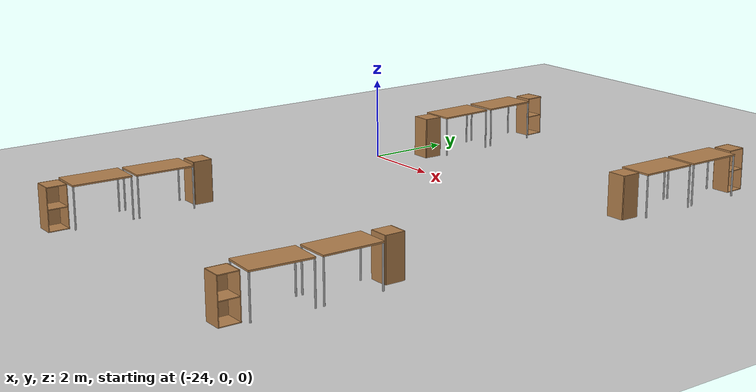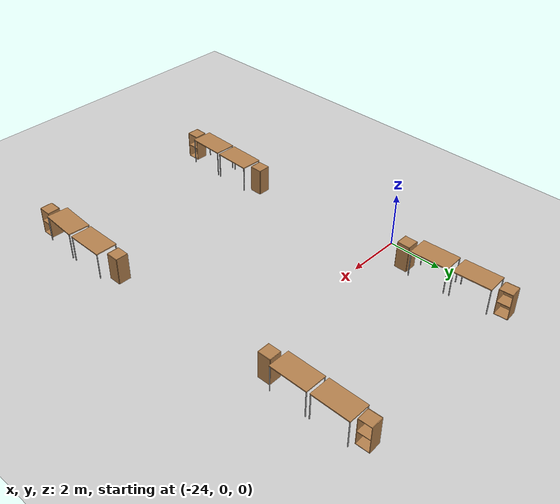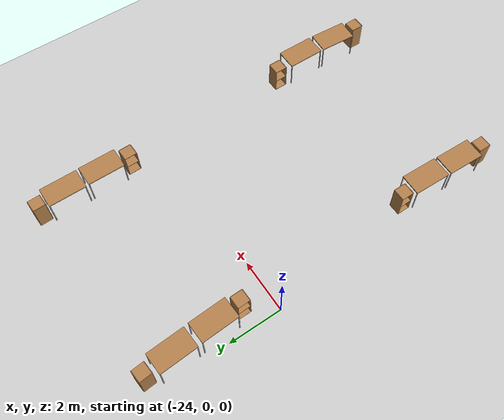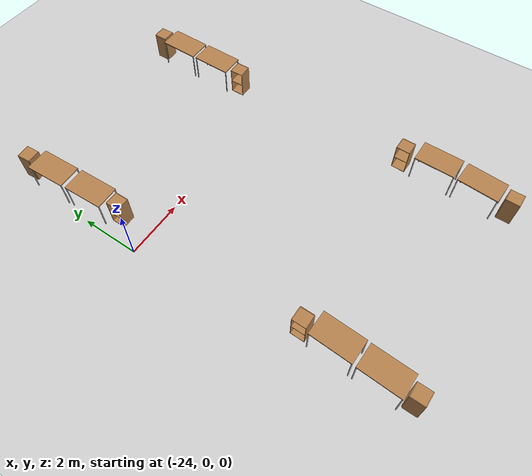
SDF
<sdf version="1.6">
 <world name="default">
  <model name="ground_plane">
   <static>1</static>
   <link name="link">
    <collision name="collision">
     <geometry><plane><normal>0 0 1</normal><size>100 100</size></plane></geometry>
     <surface><friction><ode><mu>100</mu><mu2>50</mu2></ode></friction></surface>
    </collision>
    <visual name="visual">
     <cast_shadows>0</cast_shadows>
     <geometry><plane><normal>0 0 1</normal><size>100 100</size></plane></geometry>
     <material>
      <script><uri>file://media/materials/scripts/gazebo.material</uri><name>Gazebo/Grey</name></script>
     </material>
    </visual>
   </link>
  </model>
  <model name="cabinet">
   <static>1</static>
   <link name="cabinet_bottom_plate">
    <inertial>
     <pose>0 0 -1 0 -0 0</pose>
     <inertia><ixx>2.05</ixx><ixy>0</ixy><ixz>0</ixz><iyy>2.05</iyy><iyz>0</iyz><izz>2.05</izz></inertia>
     <mass>25</mass>
    </inertial>
    <collision name="cabinet_bottom_plate_geom">
     <pose>0 0 0.01 0 -0 0</pose>
     <geometry><box><size>0.45 0.45 0.02</size></box></geometry>
    </collision>
    <visual name="cabinet_bottom_plate_geom_visual">
     <pose>0 0 0.01 0 -0 0</pose>
     <geometry><box><size>0.45 0.45 0.02</size></box></geometry>
     <material>
      <script><uri>file://media/materials/scripts/gazebo.material</uri><name>Gazebo/Wood</name></script>
     </material>
    </visual>
    <collision name="cabinet_bottom_plate_geom_cabinet_back_plate">
     <pose>0.235 0 0.51 0 -0 0</pose>
     <geometry><box><size>0.02 0.45 1.02</size></box></geometry>
    </collision>
    <visual name="cabinet_bottom_plate_geom_cabinet_back_plate_visual">
     <pose>0.235 0 0.51 0 -0 0</pose>
     <geometry><box><size>0.02 0.45 1.02</size></box></geometry>
     <material>
      <script><uri>file://media/materials/scripts/gazebo.material</uri><name>Gazebo/Wood</name></script>
     </material>
    </visual>
    <collision name="cabinet_bottom_plate_geom_cabinet_left_plate">
     <pose>0 0.235 0.51 0 -0 0</pose>
     <geometry><box><size>0.45 0.02 1.02</size></box></geometry>
    </collision>
    <visual name="cabinet_bottom_plate_geom_cabinet_left_plate_visual">
     <pose>0 0.235 0.51 0 -0 0</pose>
     <geometry><box><size>0.45 0.02 1.02</size></box></geometry>
     <material>
      <script><uri>file://media/materials/scripts/gazebo.material</uri><name>Gazebo/Wood</name></script>
     </material>
    </visual>
    <collision name="cabinet_bottom_plate_geom_cabinet_middle_plate">
     <pose>0 0 0.51 0 -0 0</pose>
     <geometry><box><size>0.45 0.45 0.02</size></box></geometry>
    </collision>
    <visual name="cabinet_bottom_plate_geom_cabinet_middle_plate_visual">
     <pose>0 0 0.51 0 -0 0</pose>
     <geometry><box><size>0.45 0.45 0.02</size></box></geometry>
     <material>
      <script><uri>file://media/materials/scripts/gazebo.material</uri><name>Gazebo/Wood</name></script>
     </material>
    </visual>
    <collision name="cabinet_bottom_plate_geom_cabinet_right_plate">
     <pose>0 -0.235 0.51 0 -0 0</pose>
     <geometry><box><size>0.45 0.02 1.02</size></box></geometry>
    </collision>
    <visual name="cabinet_bottom_plate_geom_cabinet_right_plate_visual">
     <pose>0 -0.235 0.51 0 -0 0</pose>
     <geometry><box><size>0.45 0.02 1.02</size></box></geometry>
     <material>
      <script><uri>file://media/materials/scripts/gazebo.material</uri><name>Gazebo/Wood</name></script>
     </material>
    </visual>
    <collision name="cabinet_bottom_plate_geom_cabinet_top_plate">
     <pose>0 0 1.01 0 -0 0</pose>
     <geometry><box><size>0.45 0.45 0.02</size></box></geometry>
    </collision>
    <visual name="cabinet_bottom_plate_geom_cabinet_top_plate_visual">
     <pose>0 0 1.01 0 -0 0</pose>
     <geometry><box><size>0.45 0.45 0.02</size></box></geometry>
     <material>
      <script><uri>file://media/materials/scripts/gazebo.material</uri><name>Gazebo/Wood</name></script>
     </material>
    </visual>
   </link>
   <pose>-23.2293 -5.67908 0 0 -0 0.000948</pose>
  </model>
  <model name="table">
   <static>0</static>
   <link name="link">
    <collision name="surface">
     <pose>0 0 1 0 -0 0</pose>
     <geometry><box><size>1.5 0.8 0.03</size></box></geometry>
     <surface><friction><ode><mu>0.6</mu><mu2>0.6</mu2></ode></friction></surface>
    </collision>
    <visual name="visual1">
     <pose>0 0 1 0 -0 0</pose>
     <geometry><box><size>1.4 0.8 0.04</size></box></geometry>
     <material>
      <script><uri>file://media/materials/scripts/gazebo.material</uri><name>Gazebo/Wood</name></script>
     </material>
    </visual>
    <collision name="front_left_leg">
     <pose>0.68 0.38 0.5 0 -0 0</pose>
     <geometry><cylinder><radius>0.02</radius><length>1</length></cylinder></geometry>
    </collision>
    <visual name="front_left_leg">
     <pose>0.68 0.38 0.5 0 -0 0</pose>
     <geometry><cylinder><radius>0.02</radius><length>1</length></cylinder></geometry>
     <material>
      <script><uri>file://media/materials/scripts/gazebo.material</uri><name>Gazebo/Grey</name></script>
     </material>
    </visual>
    <collision name="front_right_leg">
     <pose>0.68 -0.38 0.5 0 -0 0</pose>
     <geometry><cylinder><radius>0.02</radius><length>1</length></cylinder></geometry>
    </collision>
    <visual name="front_right_leg">
     <pose>0.68 -0.38 0.5 0 -0 0</pose>
     <geometry><cylinder><radius>0.02</radius><length>1</length></cylinder></geometry>
     <material>
      <script><uri>file://media/materials/scripts/gazebo.material</uri><name>Gazebo/Grey</name></script>
     </material>
    </visual>
    <collision name="back_right_leg">
     <pose>-0.68 -0.38 0.5 0 -0 0</pose>
     <geometry><cylinder><radius>0.02</radius><length>1</length></cylinder></geometry>
    </collision>
    <visual name="back_right_leg">
     <pose>-0.68 -0.38 0.5 0 -0 0</pose>
     <geometry><cylinder><radius>0.02</radius><length>1</length></cylinder></geometry>
     <material>
      <script><uri>file://media/materials/scripts/gazebo.material</uri><name>Gazebo/Grey</name></script>
     </material>
    </visual>
    <collision name="back_left_leg">
     <pose>-0.68 0.38 0.5 0 -0 0</pose>
     <geometry><cylinder><radius>0.02</radius><length>1</length></cylinder></geometry>
    </collision>
    <visual name="back_left_leg">
     <pose>-0.68 0.38 0.5 0 -0 0</pose>
     <geometry><cylinder><radius>0.02</radius><length>1</length></cylinder></geometry>
     <material>
      <script><uri>file://media/materials/scripts/gazebo.material</uri><name>Gazebo/Grey</name></script>
     </material>
    </visual>
    <inertial>
     <inertia><ixx>1</ixx><ixy>0</ixy><ixz>0</ixz><iyy>1</iyy><iyz>0</iyz><izz>1</izz></inertia>
     <mass>1</mass>
    </inertial>
   </link>
   <pose>-23.227 -8.22913 -1e-06 -0 1e-06 -1.60622</pose>
  </model>
  <model name="table_clone">
   <static>0</static>
   <link name="link">
    <collision name="surface">
     <pose>0 0 1 0 -0 0</pose>
     <geometry><box><size>1.5 0.8 0.03</size></box></geometry>
     <surface><friction><ode><mu>0.6</mu><mu2>0.6</mu2></ode></friction></surface>
    </collision>
    <visual name="visual1">
     <pose>0 0 1 0 -0 0</pose>
     <geometry><box><size>1.4 0.8 0.04</size></box></geometry>
     <material>
      <script><uri>file://media/materials/scripts/gazebo.material</uri><name>Gazebo/Wood</name></script>
     </material>
    </visual>
    <collision name="front_left_leg">
     <pose>0.68 0.38 0.5 0 -0 0</pose>
     <geometry><cylinder><radius>0.02</radius><length>1</length></cylinder></geometry>
    </collision>
    <visual name="front_left_leg">
     <pose>0.68 0.38 0.5 0 -0 0</pose>
     <geometry><cylinder><radius>0.02</radius><length>1</length></cylinder></geometry>
     <material>
      <script><uri>file://media/materials/scripts/gazebo.material</uri><name>Gazebo/Grey</name></script>
     </material>
    </visual>
    <collision name="front_right_leg">
     <pose>0.68 -0.38 0.5 0 -0 0</pose>
     <geometry><cylinder><radius>0.02</radius><length>1</length></cylinder></geometry>
    </collision>
    <visual name="front_right_leg">
     <pose>0.68 -0.38 0.5 0 -0 0</pose>
     <geometry><cylinder><radius>0.02</radius><length>1</length></cylinder></geometry>
     <material>
      <script><uri>file://media/materials/scripts/gazebo.material</uri><name>Gazebo/Grey</name></script>
     </material>
    </visual>
    <collision name="back_right_leg">
     <pose>-0.68 -0.38 0.5 0 -0 0</pose>
     <geometry><cylinder><radius>0.02</radius><length>1</length></cylinder></geometry>
    </collision>
    <visual name="back_right_leg">
     <pose>-0.68 -0.38 0.5 0 -0 0</pose>
     <geometry><cylinder><radius>0.02</radius><length>1</length></cylinder></geometry>
     <material>
      <script><uri>file://media/materials/scripts/gazebo.material</uri><name>Gazebo/Grey</name></script>
     </material>
    </visual>
    <collision name="back_left_leg">
     <pose>-0.68 0.38 0.5 0 -0 0</pose>
     <geometry><cylinder><radius>0.02</radius><length>1</length></cylinder></geometry>
    </collision>
    <visual name="back_left_leg">
     <pose>-0.68 0.38 0.5 0 -0 0</pose>
     <geometry><cylinder><radius>0.02</radius><length>1</length></cylinder></geometry>
     <material>
      <script><uri>file://media/materials/scripts/gazebo.material</uri><name>Gazebo/Grey</name></script>
     </material>
    </visual>
    <inertial>
     <inertia><ixx>1</ixx><ixy>0</ixy><ixz>0</ixz><iyy>1</iyy><iyz>0</iyz><izz>1</izz></inertia>
     <mass>1</mass>
    </inertial>
   </link>
   <pose>-23.4772 3.6839 -9e-06 1e-06 -0 1.62339</pose>
  </model>
  <model name="table_clone_0">
   <static>0</static>
   <link name="link">
    <collision name="surface">
     <pose>0 0 1 0 -0 0</pose>
     <geometry><box><size>1.5 0.8 0.03</size></box></geometry>
     <surface><friction><ode><mu>0.6</mu><mu2>0.6</mu2></ode></friction></surface>
    </collision>
    <visual name="visual1">
     <pose>0 0 1 0 -0 0</pose>
     <geometry><box><size>1.4 0.8 0.04</size></box></geometry>
     <material>
      <script><uri>file://media/materials/scripts/gazebo.material</uri><name>Gazebo/Wood</name></script>
     </material>
    </visual>
    <collision name="front_left_leg">
     <pose>0.68 0.38 0.5 0 -0 0</pose>
     <geometry><cylinder><radius>0.02</radius><length>1</length></cylinder></geometry>
    </collision>
    <visual name="front_left_leg">
     <pose>0.68 0.38 0.5 0 -0 0</pose>
     <geometry><cylinder><radius>0.02</radius><length>1</length></cylinder></geometry>
     <material>
      <script><uri>file://media/materials/scripts/gazebo.material</uri><name>Gazebo/Grey</name></script>
     </material>
    </visual>
    <collision name="front_right_leg">
     <pose>0.68 -0.38 0.5 0 -0 0</pose>
     <geometry><cylinder><radius>0.02</radius><length>1</length></cylinder></geometry>
    </collision>
    <visual name="front_right_leg">
     <pose>0.68 -0.38 0.5 0 -0 0</pose>
     <geometry><cylinder><radius>0.02</radius><length>1</length></cylinder></geometry>
     <material>
      <script><uri>file://media/materials/scripts/gazebo.material</uri><name>Gazebo/Grey</name></script>
     </material>
    </visual>
    <collision name="back_right_leg">
     <pose>-0.68 -0.38 0.5 0 -0 0</pose>
     <geometry><cylinder><radius>0.02</radius><length>1</length></cylinder></geometry>
    </collision>
    <visual name="back_right_leg">
     <pose>-0.68 -0.38 0.5 0 -0 0</pose>
     <geometry><cylinder><radius>0.02</radius><length>1</length></cylinder></geometry>
     <material>
      <script><uri>file://media/materials/scripts/gazebo.material</uri><name>Gazebo/Grey</name></script>
     </material>
    </visual>
    <collision name="back_left_leg">
     <pose>-0.68 0.38 0.5 0 -0 0</pose>
     <geometry><cylinder><radius>0.02</radius><length>1</length></cylinder></geometry>
    </collision>
    <visual name="back_left_leg">
     <pose>-0.68 0.38 0.5 0 -0 0</pose>
     <geometry><cylinder><radius>0.02</radius><length>1</length></cylinder></geometry>
     <material>
      <script><uri>file://media/materials/scripts/gazebo.material</uri><name>Gazebo/Grey</name></script>
     </material>
    </visual>
    <inertial>
     <inertia><ixx>1</ixx><ixy>0</ixy><ixz>0</ixz><iyy>1</iyy><iyz>0</iyz><izz>1</izz></inertia>
     <mass>1</mass>
    </inertial>
   </link>
   <pose>-23.1636 -6.73043 -8e-06 0 0 -1.60622</pose>
  </model>
  <model name="table_clone_clone">
   <static>0</static>
   <link name="link">
    <collision name="surface">
     <pose>0 0 1 0 -0 0</pose>
     <geometry><box><size>1.5 0.8 0.03</size></box></geometry>
     <surface><friction><ode><mu>0.6</mu><mu2>0.6</mu2></ode></friction></surface>
    </collision>
    <visual name="visual1">
     <pose>0 0 1 0 -0 0</pose>
     <geometry><box><size>1.4 0.8 0.04</size></box></geometry>
     <material>
      <script><uri>file://media/materials/scripts/gazebo.material</uri><name>Gazebo/Wood</name></script>
     </material>
    </visual>
    <collision name="front_left_leg">
     <pose>0.68 0.38 0.5 0 -0 0</pose>
     <geometry><cylinder><radius>0.02</radius><length>1</length></cylinder></geometry>
    </collision>
    <visual name="front_left_leg">
     <pose>0.68 0.38 0.5 0 -0 0</pose>
     <geometry><cylinder><radius>0.02</radius><length>1</length></cylinder></geometry>
     <material>
      <script><uri>file://media/materials/scripts/gazebo.material</uri><name>Gazebo/Grey</name></script>
     </material>
    </visual>
    <collision name="front_right_leg">
     <pose>0.68 -0.38 0.5 0 -0 0</pose>
     <geometry><cylinder><radius>0.02</radius><length>1</length></cylinder></geometry>
    </collision>
    <visual name="front_right_leg">
     <pose>0.68 -0.38 0.5 0 -0 0</pose>
     <geometry><cylinder><radius>0.02</radius><length>1</length></cylinder></geometry>
     <material>
      <script><uri>file://media/materials/scripts/gazebo.material</uri><name>Gazebo/Grey</name></script>
     </material>
    </visual>
    <collision name="back_right_leg">
     <pose>-0.68 -0.38 0.5 0 -0 0</pose>
     <geometry><cylinder><radius>0.02</radius><length>1</length></cylinder></geometry>
    </collision>
    <visual name="back_right_leg">
     <pose>-0.68 -0.38 0.5 0 -0 0</pose>
     <geometry><cylinder><radius>0.02</radius><length>1</length></cylinder></geometry>
     <material>
      <script><uri>file://media/materials/scripts/gazebo.material</uri><name>Gazebo/Grey</name></script>
     </material>
    </visual>
    <collision name="back_left_leg">
     <pose>-0.68 0.38 0.5 0 -0 0</pose>
     <geometry><cylinder><radius>0.02</radius><length>1</length></cylinder></geometry>
    </collision>
    <visual name="back_left_leg">
     <pose>-0.68 0.38 0.5 0 -0 0</pose>
     <geometry><cylinder><radius>0.02</radius><length>1</length></cylinder></geometry>
     <material>
      <script><uri>file://media/materials/scripts/gazebo.material</uri><name>Gazebo/Grey</name></script>
     </material>
    </visual>
    <inertial>
     <inertia><ixx>1</ixx><ixy>0</ixy><ixz>0</ixz><iyy>1</iyy><iyz>0</iyz><izz>1</izz></inertia>
     <mass>1</mass>
    </inertial>
   </link>
   <pose>-23.3855 2.13103 0 0 -0 1.61497</pose>
  </model>
  <model name="cabinet_clone">
   <static>1</static>
   <link name="cabinet_bottom_plate">
    <inertial>
     <pose>0 0 -1 0 -0 0</pose>
     <inertia><ixx>2.05</ixx><ixy>0</ixy><ixz>0</ixz><iyy>2.05</iyy><iyz>0</iyz><izz>2.05</izz></inertia>
     <mass>25</mass>
    </inertial>
    <collision name="cabinet_bottom_plate_geom">
     <pose>0 0 0.01 0 -0 0</pose>
     <geometry><box><size>0.45 0.45 0.02</size></box></geometry>
    </collision>
    <visual name="cabinet_bottom_plate_geom_visual">
     <pose>0 0 0.01 0 -0 0</pose>
     <geometry><box><size>0.45 0.45 0.02</size></box></geometry>
     <material>
      <script><uri>file://media/materials/scripts/gazebo.material</uri><name>Gazebo/Wood</name></script>
     </material>
    </visual>
    <collision name="cabinet_bottom_plate_geom_cabinet_back_plate">
     <pose>0.235 0 0.51 0 -0 0</pose>
     <geometry><box><size>0.02 0.45 1.02</size></box></geometry>
    </collision>
    <visual name="cabinet_bottom_plate_geom_cabinet_back_plate_visual">
     <pose>0.235 0 0.51 0 -0 0</pose>
     <geometry><box><size>0.02 0.45 1.02</size></box></geometry>
     <material>
      <script><uri>file://media/materials/scripts/gazebo.material</uri><name>Gazebo/Wood</name></script>
     </material>
    </visual>
    <collision name="cabinet_bottom_plate_geom_cabinet_left_plate">
     <pose>0 0.235 0.51 0 -0 0</pose>
     <geometry><box><size>0.45 0.02 1.02</size></box></geometry>
    </collision>
    <visual name="cabinet_bottom_plate_geom_cabinet_left_plate_visual">
     <pose>0 0.235 0.51 0 -0 0</pose>
     <geometry><box><size>0.45 0.02 1.02</size></box></geometry>
     <material>
      <script><uri>file://media/materials/scripts/gazebo.material</uri><name>Gazebo/Wood</name></script>
     </material>
    </visual>
    <collision name="cabinet_bottom_plate_geom_cabinet_middle_plate">
     <pose>0 0 0.51 0 -0 0</pose>
     <geometry><box><size>0.45 0.45 0.02</size></box></geometry>
    </collision>
    <visual name="cabinet_bottom_plate_geom_cabinet_middle_plate_visual">
     <pose>0 0 0.51 0 -0 0</pose>
     <geometry><box><size>0.45 0.45 0.02</size></box></geometry>
     <material>
      <script><uri>file://media/materials/scripts/gazebo.material</uri><name>Gazebo/Wood</name></script>
     </material>
    </visual>
    <collision name="cabinet_bottom_plate_geom_cabinet_right_plate">
     <pose>0 -0.235 0.51 0 -0 0</pose>
     <geometry><box><size>0.45 0.02 1.02</size></box></geometry>
    </collision>
    <visual name="cabinet_bottom_plate_geom_cabinet_right_plate_visual">
     <pose>0 -0.235 0.51 0 -0 0</pose>
     <geometry><box><size>0.45 0.02 1.02</size></box></geometry>
     <material>
      <script><uri>file://media/materials/scripts/gazebo.material</uri><name>Gazebo/Wood</name></script>
     </material>
    </visual>
    <collision name="cabinet_bottom_plate_geom_cabinet_top_plate">
     <pose>0 0 1.01 0 -0 0</pose>
     <geometry><box><size>0.45 0.45 0.02</size></box></geometry>
    </collision>
    <visual name="cabinet_bottom_plate_geom_cabinet_top_plate_visual">
     <pose>0 0 1.01 0 -0 0</pose>
     <geometry><box><size>0.45 0.45 0.02</size></box></geometry>
     <material>
      <script><uri>file://media/materials/scripts/gazebo.material</uri><name>Gazebo/Wood</name></script>
     </material>
    </visual>
   </link>
   <pose>-23.5321 4.76626 0.017437 0 0 -3.06279</pose>
  </model>
  <model name="cabinet_clone_clone">
   <static>1</static>
   <link name="cabinet_bottom_plate">
    <inertial>
     <pose>0 0 -1 0 -0 0</pose>
     <inertia><ixx>2.05</ixx><ixy>0</ixy><ixz>0</ixz><iyy>2.05</iyy><iyz>0</iyz><izz>2.05</izz></inertia>
     <mass>25</mass>
    </inertial>
    <collision name="cabinet_bottom_plate_geom">
     <pose>0 0 0.01 0 -0 0</pose>
     <geometry><box><size>0.45 0.45 0.02</size></box></geometry>
    </collision>
    <visual name="cabinet_bottom_plate_geom_visual">
     <pose>0 0 0.01 0 -0 0</pose>
     <geometry><box><size>0.45 0.45 0.02</size></box></geometry>
     <material>
      <script><uri>file://media/materials/scripts/gazebo.material</uri><name>Gazebo/Wood</name></script>
     </material>
    </visual>
    <collision name="cabinet_bottom_plate_geom_cabinet_back_plate">
     <pose>0.235 0 0.51 0 -0 0</pose>
     <geometry><box><size>0.02 0.45 1.02</size></box></geometry>
    </collision>
    <visual name="cabinet_bottom_plate_geom_cabinet_back_plate_visual">
     <pose>0.235 0 0.51 0 -0 0</pose>
     <geometry><box><size>0.02 0.45 1.02</size></box></geometry>
     <material>
      <script><uri>file://media/materials/scripts/gazebo.material</uri><name>Gazebo/Wood</name></script>
     </material>
    </visual>
    <collision name="cabinet_bottom_plate_geom_cabinet_left_plate">
     <pose>0 0.235 0.51 0 -0 0</pose>
     <geometry><box><size>0.45 0.02 1.02</size></box></geometry>
    </collision>
    <visual name="cabinet_bottom_plate_geom_cabinet_left_plate_visual">
     <pose>0 0.235 0.51 0 -0 0</pose>
     <geometry><box><size>0.45 0.02 1.02</size></box></geometry>
     <material>
      <script><uri>file://media/materials/scripts/gazebo.material</uri><name>Gazebo/Wood</name></script>
     </material>
    </visual>
    <collision name="cabinet_bottom_plate_geom_cabinet_middle_plate">
     <pose>0 0 0.51 0 -0 0</pose>
     <geometry><box><size>0.45 0.45 0.02</size></box></geometry>
    </collision>
    <visual name="cabinet_bottom_plate_geom_cabinet_middle_plate_visual">
     <pose>0 0 0.51 0 -0 0</pose>
     <geometry><box><size>0.45 0.45 0.02</size></box></geometry>
     <material>
      <script><uri>file://media/materials/scripts/gazebo.material</uri><name>Gazebo/Wood</name></script>
     </material>
    </visual>
    <collision name="cabinet_bottom_plate_geom_cabinet_right_plate">
     <pose>0 -0.235 0.51 0 -0 0</pose>
     <geometry><box><size>0.45 0.02 1.02</size></box></geometry>
    </collision>
    <visual name="cabinet_bottom_plate_geom_cabinet_right_plate_visual">
     <pose>0 -0.235 0.51 0 -0 0</pose>
     <geometry><box><size>0.45 0.02 1.02</size></box></geometry>
     <material>
      <script><uri>file://media/materials/scripts/gazebo.material</uri><name>Gazebo/Wood</name></script>
     </material>
    </visual>
    <collision name="cabinet_bottom_plate_geom_cabinet_top_plate">
     <pose>0 0 1.01 0 -0 0</pose>
     <geometry><box><size>0.45 0.45 0.02</size></box></geometry>
    </collision>
    <visual name="cabinet_bottom_plate_geom_cabinet_top_plate_visual">
     <pose>0 0 1.01 0 -0 0</pose>
     <geometry><box><size>0.45 0.45 0.02</size></box></geometry>
     <material>
      <script><uri>file://media/materials/scripts/gazebo.material</uri><name>Gazebo/Wood</name></script>
     </material>
    </visual>
   </link>
   <pose>-23.2868 1.07698 0.017437 -0.01053 -0.000628 0.017723</pose>
  </model>
  <model name="cabinet_clone_clone_0">
   <static>1</static>
   <link name="cabinet_bottom_plate">
    <inertial>
     <pose>0 0 -1 0 -0 0</pose>
     <inertia><ixx>2.05</ixx><ixy>0</ixy><ixz>0</ixz><iyy>2.05</iyy><iyz>0</iyz><izz>2.05</izz></inertia>
     <mass>25</mass>
    </inertial>
    <collision name="cabinet_bottom_plate_geom">
     <pose>0 0 0.01 0 -0 0</pose>
     <geometry><box><size>0.45 0.45 0.02</size></box></geometry>
    </collision>
    <visual name="cabinet_bottom_plate_geom_visual">
     <pose>0 0 0.01 0 -0 0</pose>
     <geometry><box><size>0.45 0.45 0.02</size></box></geometry>
     <material>
      <script><uri>file://media/materials/scripts/gazebo.material</uri><name>Gazebo/Wood</name></script>
     </material>
    </visual>
    <collision name="cabinet_bottom_plate_geom_cabinet_back_plate">
     <pose>0.235 0 0.51 0 -0 0</pose>
     <geometry><box><size>0.02 0.45 1.02</size></box></geometry>
    </collision>
    <visual name="cabinet_bottom_plate_geom_cabinet_back_plate_visual">
     <pose>0.235 0 0.51 0 -0 0</pose>
     <geometry><box><size>0.02 0.45 1.02</size></box></geometry>
     <material>
      <script><uri>file://media/materials/scripts/gazebo.material</uri><name>Gazebo/Wood</name></script>
     </material>
    </visual>
    <collision name="cabinet_bottom_plate_geom_cabinet_left_plate">
     <pose>0 0.235 0.51 0 -0 0</pose>
     <geometry><box><size>0.45 0.02 1.02</size></box></geometry>
    </collision>
    <visual name="cabinet_bottom_plate_geom_cabinet_left_plate_visual">
     <pose>0 0.235 0.51 0 -0 0</pose>
     <geometry><box><size>0.45 0.02 1.02</size></box></geometry>
     <material>
      <script><uri>file://media/materials/scripts/gazebo.material</uri><name>Gazebo/Wood</name></script>
     </material>
    </visual>
    <collision name="cabinet_bottom_plate_geom_cabinet_middle_plate">
     <pose>0 0 0.51 0 -0 0</pose>
     <geometry><box><size>0.45 0.45 0.02</size></box></geometry>
    </collision>
    <visual name="cabinet_bottom_plate_geom_cabinet_middle_plate_visual">
     <pose>0 0 0.51 0 -0 0</pose>
     <geometry><box><size>0.45 0.45 0.02</size></box></geometry>
     <material>
      <script><uri>file://media/materials/scripts/gazebo.material</uri><name>Gazebo/Wood</name></script>
     </material>
    </visual>
    <collision name="cabinet_bottom_plate_geom_cabinet_right_plate">
     <pose>0 -0.235 0.51 0 -0 0</pose>
     <geometry><box><size>0.45 0.02 1.02</size></box></geometry>
    </collision>
    <visual name="cabinet_bottom_plate_geom_cabinet_right_plate_visual">
     <pose>0 -0.235 0.51 0 -0 0</pose>
     <geometry><box><size>0.45 0.02 1.02</size></box></geometry>
     <material>
      <script><uri>file://media/materials/scripts/gazebo.material</uri><name>Gazebo/Wood</name></script>
     </material>
    </visual>
    <collision name="cabinet_bottom_plate_geom_cabinet_top_plate">
     <pose>0 0 1.01 0 -0 0</pose>
     <geometry><box><size>0.45 0.45 0.02</size></box></geometry>
    </collision>
    <visual name="cabinet_bottom_plate_geom_cabinet_top_plate_visual">
     <pose>0 0 1.01 0 -0 0</pose>
     <geometry><box><size>0.45 0.45 0.02</size></box></geometry>
     <material>
      <script><uri>file://media/materials/scripts/gazebo.material</uri><name>Gazebo/Wood</name></script>
     </material>
    </visual>
   </link>
   <pose>-16.504 4.88239 0.017437 0 0 -3.10692</pose>
  </model>
  <model name="table_clone_clone_0">
   <static>0</static>
   <link name="link">
    <collision name="surface">
     <pose>0 0 1 0 -0 0</pose>
     <geometry><box><size>1.5 0.8 0.03</size></box></geometry>
     <surface><friction><ode><mu>0.6</mu><mu2>0.6</mu2></ode></friction></surface>
    </collision>
    <visual name="visual1">
     <pose>0 0 1 0 -0 0</pose>
     <geometry><box><size>1.4 0.8 0.04</size></box></geometry>
     <material>
      <script><uri>file://media/materials/scripts/gazebo.material</uri><name>Gazebo/Wood</name></script>
     </material>
    </visual>
    <collision name="front_left_leg">
     <pose>0.68 0.38 0.5 0 -0 0</pose>
     <geometry><cylinder><radius>0.02</radius><length>1</length></cylinder></geometry>
    </collision>
    <visual name="front_left_leg">
     <pose>0.68 0.38 0.5 0 -0 0</pose>
     <geometry><cylinder><radius>0.02</radius><length>1</length></cylinder></geometry>
     <material>
      <script><uri>file://media/materials/scripts/gazebo.material</uri><name>Gazebo/Grey</name></script>
     </material>
    </visual>
    <collision name="front_right_leg">
     <pose>0.68 -0.38 0.5 0 -0 0</pose>
     <geometry><cylinder><radius>0.02</radius><length>1</length></cylinder></geometry>
    </collision>
    <visual name="front_right_leg">
     <pose>0.68 -0.38 0.5 0 -0 0</pose>
     <geometry><cylinder><radius>0.02</radius><length>1</length></cylinder></geometry>
     <material>
      <script><uri>file://media/materials/scripts/gazebo.material</uri><name>Gazebo/Grey</name></script>
     </material>
    </visual>
    <collision name="back_right_leg">
     <pose>-0.68 -0.38 0.5 0 -0 0</pose>
     <geometry><cylinder><radius>0.02</radius><length>1</length></cylinder></geometry>
    </collision>
    <visual name="back_right_leg">
     <pose>-0.68 -0.38 0.5 0 -0 0</pose>
     <geometry><cylinder><radius>0.02</radius><length>1</length></cylinder></geometry>
     <material>
      <script><uri>file://media/materials/scripts/gazebo.material</uri><name>Gazebo/Grey</name></script>
     </material>
    </visual>
    <collision name="back_left_leg">
     <pose>-0.68 0.38 0.5 0 -0 0</pose>
     <geometry><cylinder><radius>0.02</radius><length>1</length></cylinder></geometry>
    </collision>
    <visual name="back_left_leg">
     <pose>-0.68 0.38 0.5 0 -0 0</pose>
     <geometry><cylinder><radius>0.02</radius><length>1</length></cylinder></geometry>
     <material>
      <script><uri>file://media/materials/scripts/gazebo.material</uri><name>Gazebo/Grey</name></script>
     </material>
    </visual>
    <inertial>
     <inertia><ixx>1</ixx><ixy>0</ixy><ixz>0</ixz><iyy>1</iyy><iyz>0</iyz><izz>1</izz></inertia>
     <mass>1</mass>
    </inertial>
   </link>
   <pose>-16.4627 3.87988 -0.002392 0 -2e-06 1.57136</pose>
  </model>
  <model name="table_clone_clone_clone">
   <static>0</static>
   <link name="link">
    <collision name="surface">
     <pose>0 0 1 0 -0 0</pose>
     <geometry><box><size>1.5 0.8 0.03</size></box></geometry>
     <surface><friction><ode><mu>0.6</mu><mu2>0.6</mu2></ode></friction></surface>
    </collision>
    <visual name="visual1">
     <pose>0 0 1 0 -0 0</pose>
     <geometry><box><size>1.4 0.8 0.04</size></box></geometry>
     <material>
      <script><uri>file://media/materials/scripts/gazebo.material</uri><name>Gazebo/Wood</name></script>
     </material>
    </visual>
    <collision name="front_left_leg">
     <pose>0.68 0.38 0.5 0 -0 0</pose>
     <geometry><cylinder><radius>0.02</radius><length>1</length></cylinder></geometry>
    </collision>
    <visual name="front_left_leg">
     <pose>0.68 0.38 0.5 0 -0 0</pose>
     <geometry><cylinder><radius>0.02</radius><length>1</length></cylinder></geometry>
     <material>
      <script><uri>file://media/materials/scripts/gazebo.material</uri><name>Gazebo/Grey</name></script>
     </material>
    </visual>
    <collision name="front_right_leg">
     <pose>0.68 -0.38 0.5 0 -0 0</pose>
     <geometry><cylinder><radius>0.02</radius><length>1</length></cylinder></geometry>
    </collision>
    <visual name="front_right_leg">
     <pose>0.68 -0.38 0.5 0 -0 0</pose>
     <geometry><cylinder><radius>0.02</radius><length>1</length></cylinder></geometry>
     <material>
      <script><uri>file://media/materials/scripts/gazebo.material</uri><name>Gazebo/Grey</name></script>
     </material>
    </visual>
    <collision name="back_right_leg">
     <pose>-0.68 -0.38 0.5 0 -0 0</pose>
     <geometry><cylinder><radius>0.02</radius><length>1</length></cylinder></geometry>
    </collision>
    <visual name="back_right_leg">
     <pose>-0.68 -0.38 0.5 0 -0 0</pose>
     <geometry><cylinder><radius>0.02</radius><length>1</length></cylinder></geometry>
     <material>
      <script><uri>file://media/materials/scripts/gazebo.material</uri><name>Gazebo/Grey</name></script>
     </material>
    </visual>
    <collision name="back_left_leg">
     <pose>-0.68 0.38 0.5 0 -0 0</pose>
     <geometry><cylinder><radius>0.02</radius><length>1</length></cylinder></geometry>
    </collision>
    <visual name="back_left_leg">
     <pose>-0.68 0.38 0.5 0 -0 0</pose>
     <geometry><cylinder><radius>0.02</radius><length>1</length></cylinder></geometry>
     <material>
      <script><uri>file://media/materials/scripts/gazebo.material</uri><name>Gazebo/Grey</name></script>
     </material>
    </visual>
    <inertial>
     <inertia><ixx>1</ixx><ixy>0</ixy><ixz>0</ixz><iyy>1</iyy><iyz>0</iyz><izz>1</izz></inertia>
     <mass>1</mass>
    </inertial>
   </link>
   <pose>-16.4451 2.37988 -9e-06 0 1e-06 1.57134</pose>
  </model>
  <model name="cabinet_clone_clone_clone">
   <static>1</static>
   <link name="cabinet_bottom_plate">
    <inertial>
     <pose>0 0 -1 0 -0 0</pose>
     <inertia><ixx>2.05</ixx><ixy>0</ixy><ixz>0</ixz><iyy>2.05</iyy><iyz>0</iyz><izz>2.05</izz></inertia>
     <mass>25</mass>
    </inertial>
    <collision name="cabinet_bottom_plate_geom">
     <pose>0 0 0.01 0 -0 0</pose>
     <geometry><box><size>0.45 0.45 0.02</size></box></geometry>
    </collision>
    <visual name="cabinet_bottom_plate_geom_visual">
     <pose>0 0 0.01 0 -0 0</pose>
     <geometry><box><size>0.45 0.45 0.02</size></box></geometry>
     <material>
      <script><uri>file://media/materials/scripts/gazebo.material</uri><name>Gazebo/Wood</name></script>
     </material>
    </visual>
    <collision name="cabinet_bottom_plate_geom_cabinet_back_plate">
     <pose>0.235 0 0.51 0 -0 0</pose>
     <geometry><box><size>0.02 0.45 1.02</size></box></geometry>
    </collision>
    <visual name="cabinet_bottom_plate_geom_cabinet_back_plate_visual">
     <pose>0.235 0 0.51 0 -0 0</pose>
     <geometry><box><size>0.02 0.45 1.02</size></box></geometry>
     <material>
      <script><uri>file://media/materials/scripts/gazebo.material</uri><name>Gazebo/Wood</name></script>
     </material>
    </visual>
    <collision name="cabinet_bottom_plate_geom_cabinet_left_plate">
     <pose>0 0.235 0.51 0 -0 0</pose>
     <geometry><box><size>0.45 0.02 1.02</size></box></geometry>
    </collision>
    <visual name="cabinet_bottom_plate_geom_cabinet_left_plate_visual">
     <pose>0 0.235 0.51 0 -0 0</pose>
     <geometry><box><size>0.45 0.02 1.02</size></box></geometry>
     <material>
      <script><uri>file://media/materials/scripts/gazebo.material</uri><name>Gazebo/Wood</name></script>
     </material>
    </visual>
    <collision name="cabinet_bottom_plate_geom_cabinet_middle_plate">
     <pose>0 0 0.51 0 -0 0</pose>
     <geometry><box><size>0.45 0.45 0.02</size></box></geometry>
    </collision>
    <visual name="cabinet_bottom_plate_geom_cabinet_middle_plate_visual">
     <pose>0 0 0.51 0 -0 0</pose>
     <geometry><box><size>0.45 0.45 0.02</size></box></geometry>
     <material>
      <script><uri>file://media/materials/scripts/gazebo.material</uri><name>Gazebo/Wood</name></script>
     </material>
    </visual>
    <collision name="cabinet_bottom_plate_geom_cabinet_right_plate">
     <pose>0 -0.235 0.51 0 -0 0</pose>
     <geometry><box><size>0.45 0.02 1.02</size></box></geometry>
    </collision>
    <visual name="cabinet_bottom_plate_geom_cabinet_right_plate_visual">
     <pose>0 -0.235 0.51 0 -0 0</pose>
     <geometry><box><size>0.45 0.02 1.02</size></box></geometry>
     <material>
      <script><uri>file://media/materials/scripts/gazebo.material</uri><name>Gazebo/Wood</name></script>
     </material>
    </visual>
    <collision name="cabinet_bottom_plate_geom_cabinet_top_plate">
     <pose>0 0 1.01 0 -0 0</pose>
     <geometry><box><size>0.45 0.45 0.02</size></box></geometry>
    </collision>
    <visual name="cabinet_bottom_plate_geom_cabinet_top_plate_visual">
     <pose>0 0 1.01 0 -0 0</pose>
     <geometry><box><size>0.45 0.45 0.02</size></box></geometry>
     <material>
      <script><uri>file://media/materials/scripts/gazebo.material</uri><name>Gazebo/Wood</name></script>
     </material>
    </visual>
   </link>
   <pose>-16.4428 1.3197 0.017437 -0.01053 -0.000628 0.017723</pose>
  </model>
  <model name="cabinet_clone_0">
   <static>1</static>
   <link name="cabinet_bottom_plate">
    <inertial>
     <pose>0 0 -1 0 -0 0</pose>
     <inertia><ixx>2.05</ixx><ixy>0</ixy><ixz>0</ixz><iyy>2.05</iyy><iyz>0</iyz><izz>2.05</izz></inertia>
     <mass>25</mass>
    </inertial>
    <collision name="cabinet_bottom_plate_geom">
     <pose>0 0 0.01 0 -0 0</pose>
     <geometry><box><size>0.45 0.45 0.02</size></box></geometry>
    </collision>
    <visual name="cabinet_bottom_plate_geom_visual">
     <pose>0 0 0.01 0 -0 0</pose>
     <geometry><box><size>0.45 0.45 0.02</size></box></geometry>
     <material>
      <script><uri>file://media/materials/scripts/gazebo.material</uri><name>Gazebo/Wood</name></script>
     </material>
    </visual>
    <collision name="cabinet_bottom_plate_geom_cabinet_back_plate">
     <pose>0.235 0 0.51 0 -0 0</pose>
     <geometry><box><size>0.02 0.45 1.02</size></box></geometry>
    </collision>
    <visual name="cabinet_bottom_plate_geom_cabinet_back_plate_visual">
     <pose>0.235 0 0.51 0 -0 0</pose>
     <geometry><box><size>0.02 0.45 1.02</size></box></geometry>
     <material>
      <script><uri>file://media/materials/scripts/gazebo.material</uri><name>Gazebo/Wood</name></script>
     </material>
    </visual>
    <collision name="cabinet_bottom_plate_geom_cabinet_left_plate">
     <pose>0 0.235 0.51 0 -0 0</pose>
     <geometry><box><size>0.45 0.02 1.02</size></box></geometry>
    </collision>
    <visual name="cabinet_bottom_plate_geom_cabinet_left_plate_visual">
     <pose>0 0.235 0.51 0 -0 0</pose>
     <geometry><box><size>0.45 0.02 1.02</size></box></geometry>
     <material>
      <script><uri>file://media/materials/scripts/gazebo.material</uri><name>Gazebo/Wood</name></script>
     </material>
    </visual>
    <collision name="cabinet_bottom_plate_geom_cabinet_middle_plate">
     <pose>0 0 0.51 0 -0 0</pose>
     <geometry><box><size>0.45 0.45 0.02</size></box></geometry>
    </collision>
    <visual name="cabinet_bottom_plate_geom_cabinet_middle_plate_visual">
     <pose>0 0 0.51 0 -0 0</pose>
     <geometry><box><size>0.45 0.45 0.02</size></box></geometry>
     <material>
      <script><uri>file://media/materials/scripts/gazebo.material</uri><name>Gazebo/Wood</name></script>
     </material>
    </visual>
    <collision name="cabinet_bottom_plate_geom_cabinet_right_plate">
     <pose>0 -0.235 0.51 0 -0 0</pose>
     <geometry><box><size>0.45 0.02 1.02</size></box></geometry>
    </collision>
    <visual name="cabinet_bottom_plate_geom_cabinet_right_plate_visual">
     <pose>0 -0.235 0.51 0 -0 0</pose>
     <geometry><box><size>0.45 0.02 1.02</size></box></geometry>
     <material>
      <script><uri>file://media/materials/scripts/gazebo.material</uri><name>Gazebo/Wood</name></script>
     </material>
    </visual>
    <collision name="cabinet_bottom_plate_geom_cabinet_top_plate">
     <pose>0 0 1.01 0 -0 0</pose>
     <geometry><box><size>0.45 0.45 0.02</size></box></geometry>
    </collision>
    <visual name="cabinet_bottom_plate_geom_cabinet_top_plate_visual">
     <pose>0 0 1.01 0 -0 0</pose>
     <geometry><box><size>0.45 0.45 0.02</size></box></geometry>
     <material>
      <script><uri>file://media/materials/scripts/gazebo.material</uri><name>Gazebo/Wood</name></script>
     </material>
    </visual>
   </link>
   <pose>-23.2584 -9.22941 0 0 -0 3.13215</pose>
  </model>
  <model name="table_clone_0_clone">
   <static>0</static>
   <link name="link">
    <collision name="surface">
     <pose>0 0 1 0 -0 0</pose>
     <geometry><box><size>1.5 0.8 0.03</size></box></geometry>
     <surface><friction><ode><mu>0.6</mu><mu2>0.6</mu2></ode></friction></surface>
    </collision>
    <visual name="visual1">
     <pose>0 0 1 0 -0 0</pose>
     <geometry><box><size>1.4 0.8 0.04</size></box></geometry>
     <material>
      <script><uri>file://media/materials/scripts/gazebo.material</uri><name>Gazebo/Wood</name></script>
     </material>
    </visual>
    <collision name="front_left_leg">
     <pose>0.68 0.38 0.5 0 -0 0</pose>
     <geometry><cylinder><radius>0.02</radius><length>1</length></cylinder></geometry>
    </collision>
    <visual name="front_left_leg">
     <pose>0.68 0.38 0.5 0 -0 0</pose>
     <geometry><cylinder><radius>0.02</radius><length>1</length></cylinder></geometry>
     <material>
      <script><uri>file://media/materials/scripts/gazebo.material</uri><name>Gazebo/Grey</name></script>
     </material>
    </visual>
    <collision name="front_right_leg">
     <pose>0.68 -0.38 0.5 0 -0 0</pose>
     <geometry><cylinder><radius>0.02</radius><length>1</length></cylinder></geometry>
    </collision>
    <visual name="front_right_leg">
     <pose>0.68 -0.38 0.5 0 -0 0</pose>
     <geometry><cylinder><radius>0.02</radius><length>1</length></cylinder></geometry>
     <material>
      <script><uri>file://media/materials/scripts/gazebo.material</uri><name>Gazebo/Grey</name></script>
     </material>
    </visual>
    <collision name="back_right_leg">
     <pose>-0.68 -0.38 0.5 0 -0 0</pose>
     <geometry><cylinder><radius>0.02</radius><length>1</length></cylinder></geometry>
    </collision>
    <visual name="back_right_leg">
     <pose>-0.68 -0.38 0.5 0 -0 0</pose>
     <geometry><cylinder><radius>0.02</radius><length>1</length></cylinder></geometry>
     <material>
      <script><uri>file://media/materials/scripts/gazebo.material</uri><name>Gazebo/Grey</name></script>
     </material>
    </visual>
    <collision name="back_left_leg">
     <pose>-0.68 0.38 0.5 0 -0 0</pose>
     <geometry><cylinder><radius>0.02</radius><length>1</length></cylinder></geometry>
    </collision>
    <visual name="back_left_leg">
     <pose>-0.68 0.38 0.5 0 -0 0</pose>
     <geometry><cylinder><radius>0.02</radius><length>1</length></cylinder></geometry>
     <material>
      <script><uri>file://media/materials/scripts/gazebo.material</uri><name>Gazebo/Grey</name></script>
     </material>
    </visual>
    <inertial>
     <inertia><ixx>1</ixx><ixy>0</ixy><ixz>0</ixz><iyy>1</iyy><iyz>0</iyz><izz>1</izz></inertia>
     <mass>1</mass>
    </inertial>
   </link>
   <pose>-16.1989 -7.98887 -9e-06 1e-06 -1e-06 1.5042</pose>
  </model>
  <model name="cabinet_clone_1">
   <static>1</static>
   <link name="cabinet_bottom_plate">
    <inertial>
     <pose>0 0 -1 0 -0 0</pose>
     <inertia><ixx>2.05</ixx><ixy>0</ixy><ixz>0</ixz><iyy>2.05</iyy><iyz>0</iyz><izz>2.05</izz></inertia>
     <mass>25</mass>
    </inertial>
    <collision name="cabinet_bottom_plate_geom">
     <pose>0 0 0.01 0 -0 0</pose>
     <geometry><box><size>0.45 0.45 0.02</size></box></geometry>
    </collision>
    <visual name="cabinet_bottom_plate_geom_visual">
     <pose>0 0 0.01 0 -0 0</pose>
     <geometry><box><size>0.45 0.45 0.02</size></box></geometry>
     <material>
      <script><uri>file://media/materials/scripts/gazebo.material</uri><name>Gazebo/Wood</name></script>
     </material>
    </visual>
    <collision name="cabinet_bottom_plate_geom_cabinet_back_plate">
     <pose>0.235 0 0.51 0 -0 0</pose>
     <geometry><box><size>0.02 0.45 1.02</size></box></geometry>
    </collision>
    <visual name="cabinet_bottom_plate_geom_cabinet_back_plate_visual">
     <pose>0.235 0 0.51 0 -0 0</pose>
     <geometry><box><size>0.02 0.45 1.02</size></box></geometry>
     <material>
      <script><uri>file://media/materials/scripts/gazebo.material</uri><name>Gazebo/Wood</name></script>
     </material>
    </visual>
    <collision name="cabinet_bottom_plate_geom_cabinet_left_plate">
     <pose>0 0.235 0.51 0 -0 0</pose>
     <geometry><box><size>0.45 0.02 1.02</size></box></geometry>
    </collision>
    <visual name="cabinet_bottom_plate_geom_cabinet_left_plate_visual">
     <pose>0 0.235 0.51 0 -0 0</pose>
     <geometry><box><size>0.45 0.02 1.02</size></box></geometry>
     <material>
      <script><uri>file://media/materials/scripts/gazebo.material</uri><name>Gazebo/Wood</name></script>
     </material>
    </visual>
    <collision name="cabinet_bottom_plate_geom_cabinet_middle_plate">
     <pose>0 0 0.51 0 -0 0</pose>
     <geometry><box><size>0.45 0.45 0.02</size></box></geometry>
    </collision>
    <visual name="cabinet_bottom_plate_geom_cabinet_middle_plate_visual">
     <pose>0 0 0.51 0 -0 0</pose>
     <geometry><box><size>0.45 0.45 0.02</size></box></geometry>
     <material>
      <script><uri>file://media/materials/scripts/gazebo.material</uri><name>Gazebo/Wood</name></script>
     </material>
    </visual>
    <collision name="cabinet_bottom_plate_geom_cabinet_right_plate">
     <pose>0 -0.235 0.51 0 -0 0</pose>
     <geometry><box><size>0.45 0.02 1.02</size></box></geometry>
    </collision>
    <visual name="cabinet_bottom_plate_geom_cabinet_right_plate_visual">
     <pose>0 -0.235 0.51 0 -0 0</pose>
     <geometry><box><size>0.45 0.02 1.02</size></box></geometry>
     <material>
      <script><uri>file://media/materials/scripts/gazebo.material</uri><name>Gazebo/Wood</name></script>
     </material>
    </visual>
    <collision name="cabinet_bottom_plate_geom_cabinet_top_plate">
     <pose>0 0 1.01 0 -0 0</pose>
     <geometry><box><size>0.45 0.45 0.02</size></box></geometry>
    </collision>
    <visual name="cabinet_bottom_plate_geom_cabinet_top_plate_visual">
     <pose>0 0 1.01 0 -0 0</pose>
     <geometry><box><size>0.45 0.45 0.02</size></box></geometry>
     <material>
      <script><uri>file://media/materials/scripts/gazebo.material</uri><name>Gazebo/Wood</name></script>
     </material>
    </visual>
   </link>
   <pose>-16.2422 -5.32126 0 0 -0 0.000948</pose>
  </model>
  <model name="table_clone_0_clone_clone">
   <static>0</static>
   <link name="link">
    <collision name="surface">
     <pose>0 0 1 0 -0 0</pose>
     <geometry><box><size>1.5 0.8 0.03</size></box></geometry>
     <surface><friction><ode><mu>0.6</mu><mu2>0.6</mu2></ode></friction></surface>
    </collision>
    <visual name="visual1">
     <pose>0 0 1 0 -0 0</pose>
     <geometry><box><size>1.4 0.8 0.04</size></box></geometry>
     <material>
      <script><uri>file://media/materials/scripts/gazebo.material</uri><name>Gazebo/Wood</name></script>
     </material>
    </visual>
    <collision name="front_left_leg">
     <pose>0.68 0.38 0.5 0 -0 0</pose>
     <geometry><cylinder><radius>0.02</radius><length>1</length></cylinder></geometry>
    </collision>
    <visual name="front_left_leg">
     <pose>0.68 0.38 0.5 0 -0 0</pose>
     <geometry><cylinder><radius>0.02</radius><length>1</length></cylinder></geometry>
     <material>
      <script><uri>file://media/materials/scripts/gazebo.material</uri><name>Gazebo/Grey</name></script>
     </material>
    </visual>
    <collision name="front_right_leg">
     <pose>0.68 -0.38 0.5 0 -0 0</pose>
     <geometry><cylinder><radius>0.02</radius><length>1</length></cylinder></geometry>
    </collision>
    <visual name="front_right_leg">
     <pose>0.68 -0.38 0.5 0 -0 0</pose>
     <geometry><cylinder><radius>0.02</radius><length>1</length></cylinder></geometry>
     <material>
      <script><uri>file://media/materials/scripts/gazebo.material</uri><name>Gazebo/Grey</name></script>
     </material>
    </visual>
    <collision name="back_right_leg">
     <pose>-0.68 -0.38 0.5 0 -0 0</pose>
     <geometry><cylinder><radius>0.02</radius><length>1</length></cylinder></geometry>
    </collision>
    <visual name="back_right_leg">
     <pose>-0.68 -0.38 0.5 0 -0 0</pose>
     <geometry><cylinder><radius>0.02</radius><length>1</length></cylinder></geometry>
     <material>
      <script><uri>file://media/materials/scripts/gazebo.material</uri><name>Gazebo/Grey</name></script>
     </material>
    </visual>
    <collision name="back_left_leg">
     <pose>-0.68 0.38 0.5 0 -0 0</pose>
     <geometry><cylinder><radius>0.02</radius><length>1</length></cylinder></geometry>
    </collision>
    <visual name="back_left_leg">
     <pose>-0.68 0.38 0.5 0 -0 0</pose>
     <geometry><cylinder><radius>0.02</radius><length>1</length></cylinder></geometry>
     <material>
      <script><uri>file://media/materials/scripts/gazebo.material</uri><name>Gazebo/Grey</name></script>
     </material>
    </visual>
    <inertial>
     <inertia><ixx>1</ixx><ixy>0</ixy><ixz>0</ixz><iyy>1</iyy><iyz>0</iyz><izz>1</izz></inertia>
     <mass>1</mass>
    </inertial>
   </link>
   <pose>-16.142 -6.46563 -2e-06 0 0 -1.57475</pose>
  </model>
  <model name="cabinet_clone_0_clone">
   <static>1</static>
   <link name="cabinet_bottom_plate">
    <inertial>
     <pose>0 0 -1 0 -0 0</pose>
     <inertia><ixx>2.05</ixx><ixy>0</ixy><ixz>0</ixz><iyy>2.05</iyy><iyz>0</iyz><izz>2.05</izz></inertia>
     <mass>25</mass>
    </inertial>
    <collision name="cabinet_bottom_plate_geom">
     <pose>0 0 0.01 0 -0 0</pose>
     <geometry><box><size>0.45 0.45 0.02</size></box></geometry>
    </collision>
    <visual name="cabinet_bottom_plate_geom_visual">
     <pose>0 0 0.01 0 -0 0</pose>
     <geometry><box><size>0.45 0.45 0.02</size></box></geometry>
     <material>
      <script><uri>file://media/materials/scripts/gazebo.material</uri><name>Gazebo/Wood</name></script>
     </material>
    </visual>
    <collision name="cabinet_bottom_plate_geom_cabinet_back_plate">
     <pose>0.235 0 0.51 0 -0 0</pose>
     <geometry><box><size>0.02 0.45 1.02</size></box></geometry>
    </collision>
    <visual name="cabinet_bottom_plate_geom_cabinet_back_plate_visual">
     <pose>0.235 0 0.51 0 -0 0</pose>
     <geometry><box><size>0.02 0.45 1.02</size></box></geometry>
     <material>
      <script><uri>file://media/materials/scripts/gazebo.material</uri><name>Gazebo/Wood</name></script>
     </material>
    </visual>
    <collision name="cabinet_bottom_plate_geom_cabinet_left_plate">
     <pose>0 0.235 0.51 0 -0 0</pose>
     <geometry><box><size>0.45 0.02 1.02</size></box></geometry>
    </collision>
    <visual name="cabinet_bottom_plate_geom_cabinet_left_plate_visual">
     <pose>0 0.235 0.51 0 -0 0</pose>
     <geometry><box><size>0.45 0.02 1.02</size></box></geometry>
     <material>
      <script><uri>file://media/materials/scripts/gazebo.material</uri><name>Gazebo/Wood</name></script>
     </material>
    </visual>
    <collision name="cabinet_bottom_plate_geom_cabinet_middle_plate">
     <pose>0 0 0.51 0 -0 0</pose>
     <geometry><box><size>0.45 0.45 0.02</size></box></geometry>
    </collision>
    <visual name="cabinet_bottom_plate_geom_cabinet_middle_plate_visual">
     <pose>0 0 0.51 0 -0 0</pose>
     <geometry><box><size>0.45 0.45 0.02</size></box></geometry>
     <material>
      <script><uri>file://media/materials/scripts/gazebo.material</uri><name>Gazebo/Wood</name></script>
     </material>
    </visual>
    <collision name="cabinet_bottom_plate_geom_cabinet_right_plate">
     <pose>0 -0.235 0.51 0 -0 0</pose>
     <geometry><box><size>0.45 0.02 1.02</size></box></geometry>
    </collision>
    <visual name="cabinet_bottom_plate_geom_cabinet_right_plate_visual">
     <pose>0 -0.235 0.51 0 -0 0</pose>
     <geometry><box><size>0.45 0.02 1.02</size></box></geometry>
     <material>
      <script><uri>file://media/materials/scripts/gazebo.material</uri><name>Gazebo/Wood</name></script>
     </material>
    </visual>
    <collision name="cabinet_bottom_plate_geom_cabinet_top_plate">
     <pose>0 0 1.01 0 -0 0</pose>
     <geometry><box><size>0.45 0.45 0.02</size></box></geometry>
    </collision>
    <visual name="cabinet_bottom_plate_geom_cabinet_top_plate_visual">
     <pose>0 0 1.01 0 -0 0</pose>
     <geometry><box><size>0.45 0.45 0.02</size></box></geometry>
     <material>
      <script><uri>file://media/materials/scripts/gazebo.material</uri><name>Gazebo/Wood</name></script>
     </material>
    </visual>
   </link>
   <pose>-16.1875 -9.0556 0 0 -0 3.13215</pose>
  </model>
 </world>
</sdf>
